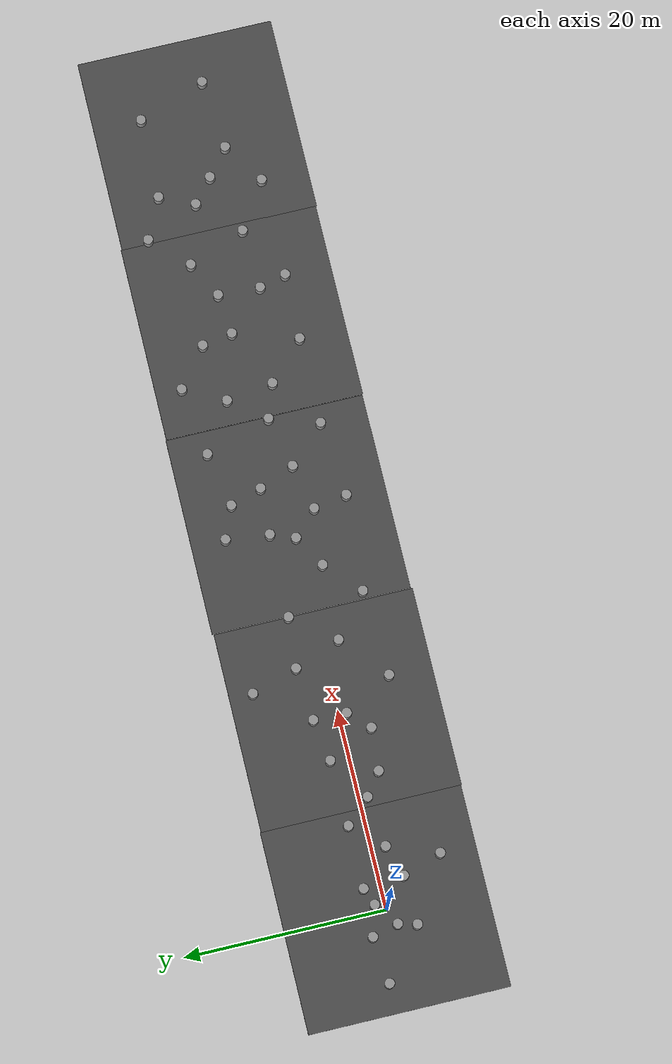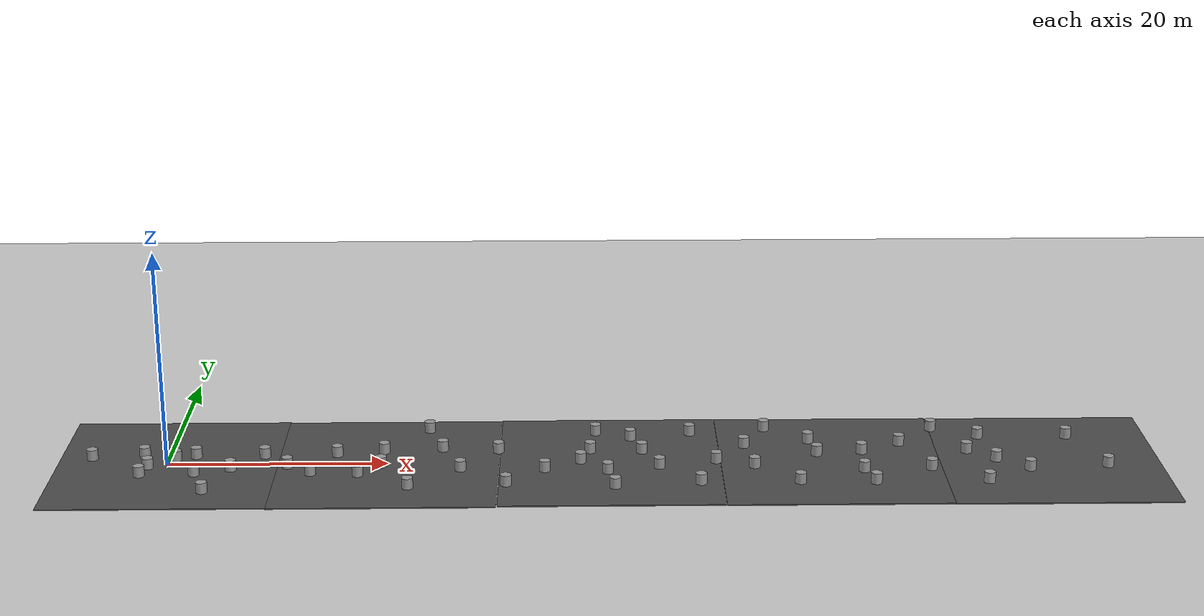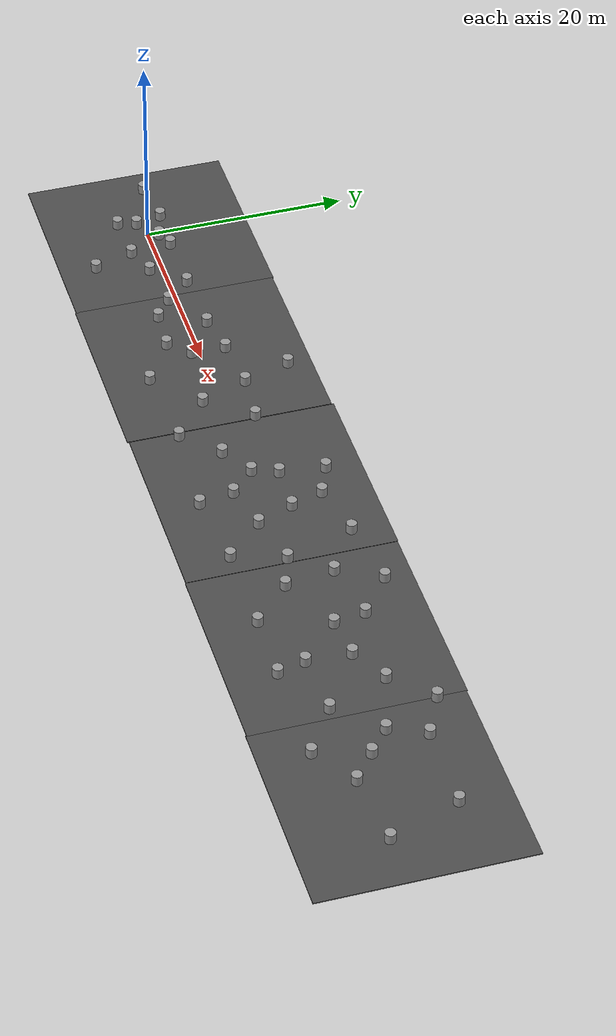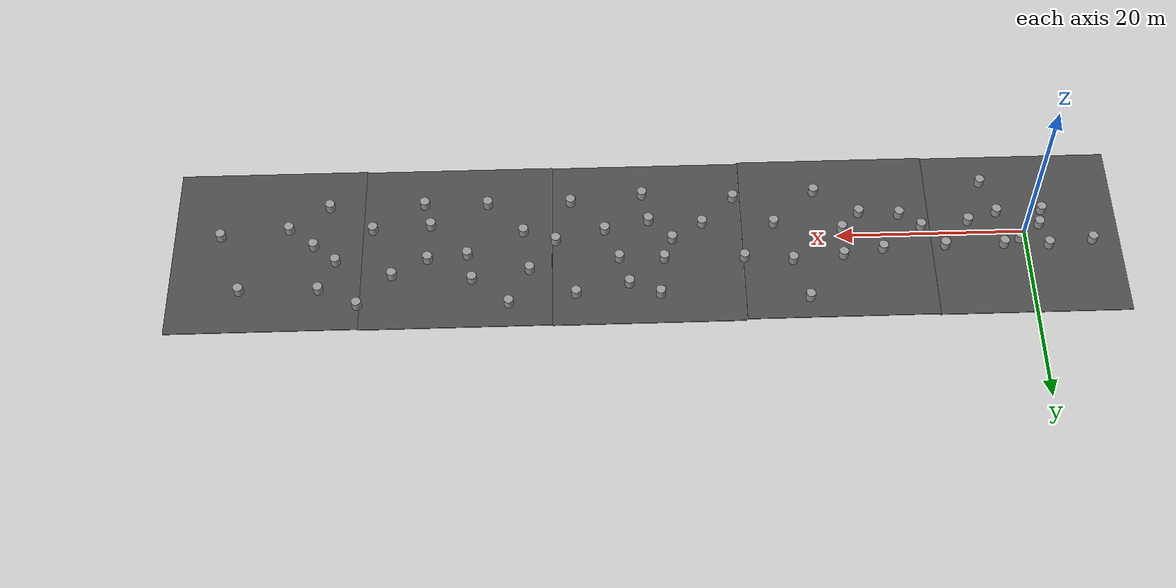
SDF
<sdf version="1.6">
 <world name="default">
  <light name="sun" type="directional">
   <pose>0 0 10 0 -0 0</pose>
   <diffuse>0.8 0.8 0.8 1</diffuse>
   <specular>0.2 0.2 0.2 1</specular>
   <attenuation>
    <range>1000</range>
    <constant>0.9</constant>
    <linear>0.01</linear>
    <quadratic>0.001</quadratic>
   </attenuation>
   <direction>-0.5 0.1 -0.9</direction>
  </light>
  <model name="ground_plane">
   <static>1</static>
   <link name="link">
    <collision name="collision">
     <geometry><plane><normal>0 0 1</normal><size>100 100</size></plane></geometry>
     <surface>
      <contact><collide_bitmask>65535</collide_bitmask></contact>
      <friction><ode><mu>100</mu><mu2>50</mu2></ode></friction>
     </surface>
    </collision>
    <visual name="visual">
     <cast_shadows>0</cast_shadows>
     <geometry><plane><normal>0 0 1</normal><size>100 100</size></plane></geometry>
     <material>
      <script><uri>file://media/materials/scripts/gazebo.material</uri><name>Gazebo/Grey</name></script>
     </material>
    </visual>
   </link>
  </model>
  <gravity>0 0 -9.8</gravity>
  <magnetic_field>6e-06 2.3e-05 -4.2e-05</magnetic_field>
  <atmosphere type="adiabatic"/>
  <physics name="default_physics" default="0" type="ode">
   <max_step_size>0.001</max_step_size>
   <real_time_factor>1</real_time_factor>
   <real_time_update_rate>1000</real_time_update_rate>
  </physics>
  <scene><ambient>0.4 0.4 0.4 1</ambient><background>0.7 0.7 0.7 1</background><shadows>1</shadows></scene>
  <audio><device>default</device></audio>
  <spherical_coordinates>
   <surface_model>EARTH_WGS84</surface_model>
   <latitude_deg>0</latitude_deg>
   <longitude_deg>0</longitude_deg>
   <elevation>0</elevation>
   <heading_deg>0</heading_deg>
  </spherical_coordinates>
  <model name="asphalt_plane">
   <static>1</static>
   <link name="link">
    <collision name="collision"><geometry><box><size>20 20 0.1</size></box></geometry></collision>
    <visual name="visual">
     <cast_shadows>0</cast_shadows>
     <geometry><box><size>20 20 0.1</size></box></geometry>
     <material>
      <script>
       <uri>model://asphalt_plane/materials/scripts</uri>
       <uri>model://asphalt_plane/materials/textures</uri>
       <name>vrc/asphalt</name>
      </script>
     </material>
    </visual>
   </link>
   <pose>0.093362 0.087531 0 0 -0 0</pose>
  </model>
  <model name="unit_cylinder">
   <pose>-2.29859 1.87875 0.55 0 -0 0.000136</pose>
   <link name="link">
    <inertial>
     <mass>1</mass>
     <inertia><ixx>0.145833</ixx><ixy>0</ixy><ixz>0</ixz><iyy>0.145833</iyy><iyz>0</iyz><izz>0.125</izz></inertia>
    </inertial>
    <collision name="collision">
     <geometry><cylinder><radius>0.5</radius><length>1</length></cylinder></geometry>
    </collision>
    <visual name="visual">
     <geometry><cylinder><radius>0.5</radius><length>1</length></cylinder></geometry>
     <material>
      <script><name>Gazebo/Grey</name><uri>file://media/materials/scripts/gazebo.material</uri></script>
     </material>
    </visual>
   </link>
  </model>
  <model name="unit_cylinder_0">
   <pose>-2.10483 -2.57831 0.549999 -4e-06 -1e-06 0.000131</pose>
   <link name="link">
    <inertial>
     <mass>1</mass>
     <inertia><ixx>0.145833</ixx><ixy>0</ixy><ixz>0</ixz><iyy>0.145833</iyy><iyz>0</iyz><izz>0.125</izz></inertia>
    </inertial>
    <collision name="collision">
     <geometry><cylinder><radius>0.5</radius><length>1</length></cylinder></geometry>
    </collision>
    <visual name="visual">
     <geometry><cylinder><radius>0.5</radius><length>1</length></cylinder></geometry>
     <material>
      <script><name>Gazebo/Grey</name><uri>file://media/materials/scripts/gazebo.material</uri></script>
     </material>
    </visual>
   </link>
  </model>
  <model name="unit_cylinder_1">
   <pose>2.42533 1.65977 0.550001 2e-06 -0 0.000243</pose>
   <link name="link">
    <inertial>
     <mass>1</mass>
     <inertia><ixx>0.145833</ixx><ixy>0</ixy><ixz>0</ixz><iyy>0.145833</iyy><iyz>0</iyz><izz>0.125</izz></inertia>
    </inertial>
    <collision name="collision">
     <geometry><cylinder><radius>0.5</radius><length>1</length></cylinder></geometry>
    </collision>
    <visual name="visual">
     <geometry><cylinder><radius>0.5</radius><length>1</length></cylinder></geometry>
     <material>
      <script><name>Gazebo/Grey</name><uri>file://media/materials/scripts/gazebo.material</uri></script>
     </material>
    </visual>
   </link>
  </model>
  <model name="unit_cylinder_2">
   <pose>2.75313 -2.41558 0.550004 7e-06 2e-06 0.000108</pose>
   <link name="link">
    <inertial>
     <mass>1</mass>
     <inertia><ixx>0.145833</ixx><ixy>0</ixy><ixz>0</ixz><iyy>0.145833</iyy><iyz>0</iyz><izz>0.125</izz></inertia>
    </inertial>
    <collision name="collision">
     <geometry><cylinder><radius>0.5</radius><length>1</length></cylinder></geometry>
    </collision>
    <visual name="visual">
     <geometry><cylinder><radius>0.5</radius><length>1</length></cylinder></geometry>
     <material>
      <script><name>Gazebo/Grey</name><uri>file://media/materials/scripts/gazebo.material</uri></script>
     </material>
    </visual>
   </link>
  </model>
  <model name="unit_cylinder_3">
   <pose>-1.63259 -0.739276 0.55 0 -0 0.000115</pose>
   <link name="link">
    <inertial>
     <mass>1</mass>
     <inertia><ixx>0.145833</ixx><ixy>0</ixy><ixz>0</ixz><iyy>0.145833</iyy><iyz>0</iyz><izz>0.125</izz></inertia>
    </inertial>
    <collision name="collision">
     <geometry><cylinder><radius>0.5</radius><length>1</length></cylinder></geometry>
    </collision>
    <visual name="visual">
     <geometry><cylinder><radius>0.5</radius><length>1</length></cylinder></geometry>
     <material>
      <script><name>Gazebo/Grey</name><uri>file://media/materials/scripts/gazebo.material</uri></script>
     </material>
    </visual>
   </link>
  </model>
  <model name="unit_cylinder_4">
   <pose>4.05996 -6.35999 0.550001 1e-06 -2e-06 -9.8e-05</pose>
   <link name="link">
    <inertial>
     <mass>1</mass>
     <inertia><ixx>0.145833</ixx><ixy>0</ixy><ixz>0</ixz><iyy>0.145833</iyy><iyz>0</iyz><izz>0.125</izz></inertia>
    </inertial>
    <collision name="collision">
     <geometry><cylinder><radius>0.5</radius><length>1</length></cylinder></geometry>
    </collision>
    <visual name="visual">
     <geometry><cylinder><radius>0.5</radius><length>1</length></cylinder></geometry>
     <material>
      <script><name>Gazebo/Grey</name><uri>file://media/materials/scripts/gazebo.material</uri></script>
     </material>
    </visual>
   </link>
  </model>
  <model name="unit_cylinder_5">
   <pose>0.672984 0.983953 0.54999 0 -0 0.000175</pose>
   <link name="link">
    <inertial>
     <mass>1</mass>
     <inertia><ixx>0.145833</ixx><ixy>0</ixy><ixz>0</ixz><iyy>0.145833</iyy><iyz>0</iyz><izz>0.125</izz></inertia>
    </inertial>
    <collision name="collision">
     <geometry><cylinder><radius>0.5</radius><length>1</length></cylinder></geometry>
    </collision>
    <visual name="visual">
     <geometry><cylinder><radius>0.5</radius><length>1</length></cylinder></geometry>
     <material>
      <script><name>Gazebo/Grey</name><uri>file://media/materials/scripts/gazebo.material</uri></script>
     </material>
    </visual>
   </link>
  </model>
  <model name="unit_cylinder_6">
   <pose>5.91371 -1.37835 0.550001 3e-06 1e-06 2.7e-05</pose>
   <link name="link">
    <inertial>
     <mass>1</mass>
     <inertia><ixx>0.145833</ixx><ixy>0</ixy><ixz>0</ixz><iyy>0.145833</iyy><iyz>0</iyz><izz>0.125</izz></inertia>
    </inertial>
    <collision name="collision">
     <geometry><cylinder><radius>0.5</radius><length>1</length></cylinder></geometry>
    </collision>
    <visual name="visual">
     <geometry><cylinder><radius>0.5</radius><length>1</length></cylinder></geometry>
     <material>
      <script><name>Gazebo/Grey</name><uri>file://media/materials/scripts/gazebo.material</uri></script>
     </material>
    </visual>
   </link>
  </model>
  <model name="unit_cylinder_7">
   <pose>8.66288 1.65125 0.549991 1e-06 -0 -0.000212</pose>
   <link name="link">
    <inertial>
     <mass>1</mass>
     <inertia><ixx>0.145833</ixx><ixy>0</ixy><ixz>0</ixz><iyy>0.145833</iyy><iyz>0</iyz><izz>0.125</izz></inertia>
    </inertial>
    <collision name="collision">
     <geometry><cylinder><radius>0.5</radius><length>1</length></cylinder></geometry>
    </collision>
    <visual name="visual">
     <geometry><cylinder><radius>0.5</radius><length>1</length></cylinder></geometry>
     <material>
      <script><name>Gazebo/Grey</name><uri>file://media/materials/scripts/gazebo.material</uri></script>
     </material>
    </visual>
   </link>
  </model>
  <model name="unit_cylinder_8">
   <pose>-6.9934 1.38182 0.549991 0 -2e-06 -0.000305</pose>
   <link name="link">
    <inertial>
     <mass>1</mass>
     <inertia><ixx>0.145833</ixx><ixy>0</ixy><ixz>0</ixz><iyy>0.145833</iyy><iyz>0</iyz><izz>0.125</izz></inertia>
    </inertial>
    <collision name="collision">
     <geometry><cylinder><radius>0.5</radius><length>1</length></cylinder></geometry>
    </collision>
    <visual name="visual">
     <geometry><cylinder><radius>0.5</radius><length>1</length></cylinder></geometry>
     <material>
      <script><name>Gazebo/Grey</name><uri>file://media/materials/scripts/gazebo.material</uri></script>
     </material>
    </visual>
   </link>
  </model>
  <model name="unit_cylinder_9">
   <pose>10.9697 -0.81715 0.550003 2e-06 6e-06 -0.000365</pose>
   <link name="link">
    <inertial>
     <mass>1</mass>
     <inertia><ixx>0.145833</ixx><ixy>0</ixy><ixz>0</ixz><iyy>0.145833</iyy><iyz>0</iyz><izz>0.125</izz></inertia>
    </inertial>
    <collision name="collision">
     <geometry><cylinder><radius>0.5</radius><length>1</length></cylinder></geometry>
    </collision>
    <visual name="visual">
     <geometry><cylinder><radius>0.5</radius><length>1</length></cylinder></geometry>
     <material>
      <script><name>Gazebo/Grey</name><uri>file://media/materials/scripts/gazebo.material</uri></script>
     </material>
    </visual>
   </link>
  </model>
  <model name="asphalt_plane_0">
   <static>1</static>
   <link name="link">
    <collision name="collision"><geometry><box><size>20 20 0.1</size></box></geometry></collision>
    <visual name="visual">
     <cast_shadows>0</cast_shadows>
     <geometry><box><size>20 20 0.1</size></box></geometry>
     <material>
      <script>
       <uri>model://asphalt_plane/materials/scripts</uri>
       <uri>model://asphalt_plane/materials/textures</uri>
       <name>vrc/asphalt</name>
      </script>
     </material>
    </visual>
   </link>
   <pose>20.0372 -0.00169 0 0 -0 0</pose>
  </model>
  <model name="unit_cylinder_10">
   <pose>15.2464 1.85955 0.55 0 -0 8.6e-05</pose>
   <link name="link">
    <inertial>
     <mass>1</mass>
     <inertia><ixx>0.145833</ixx><ixy>0</ixy><ixz>0</ixz><iyy>0.145833</iyy><iyz>0</iyz><izz>0.125</izz></inertia>
    </inertial>
    <collision name="collision">
     <geometry><cylinder><radius>0.5</radius><length>1</length></cylinder></geometry>
    </collision>
    <visual name="visual">
     <geometry><cylinder><radius>0.5</radius><length>1</length></cylinder></geometry>
     <material>
      <script><name>Gazebo/Grey</name><uri>file://media/materials/scripts/gazebo.material</uri></script>
     </material>
    </visual>
   </link>
  </model>
  <model name="unit_cylinder_11">
   <pose>17.449 -2.7822 0.550002 -4e-06 -1e-06 0.00021</pose>
   <link name="link">
    <inertial>
     <mass>1</mass>
     <inertia><ixx>0.145833</ixx><ixy>0</ixy><ixz>0</ixz><iyy>0.145833</iyy><iyz>0</iyz><izz>0.125</izz></inertia>
    </inertial>
    <collision name="collision">
     <geometry><cylinder><radius>0.5</radius><length>1</length></cylinder></geometry>
    </collision>
    <visual name="visual">
     <geometry><cylinder><radius>0.5</radius><length>1</length></cylinder></geometry>
     <material>
      <script><name>Gazebo/Grey</name><uri>file://media/materials/scripts/gazebo.material</uri></script>
     </material>
    </visual>
   </link>
  </model>
  <model name="unit_cylinder_12">
   <pose>19.4846 2.53261 0.549991 1e-06 -0 5.1e-05</pose>
   <link name="link">
    <inertial>
     <mass>1</mass>
     <inertia><ixx>0.145833</ixx><ixy>0</ixy><ixz>0</ixz><iyy>0.145833</iyy><iyz>0</iyz><izz>0.125</izz></inertia>
    </inertial>
    <collision name="collision">
     <geometry><cylinder><radius>0.5</radius><length>1</length></cylinder></geometry>
    </collision>
    <visual name="visual">
     <geometry><cylinder><radius>0.5</radius><length>1</length></cylinder></geometry>
     <material>
      <script><name>Gazebo/Grey</name><uri>file://media/materials/scripts/gazebo.material</uri></script>
     </material>
    </visual>
   </link>
  </model>
  <model name="unit_cylinder_13">
   <pose>19.4058 -0.787679 0.54999 0 -0 0.000139</pose>
   <link name="link">
    <inertial>
     <mass>1</mass>
     <inertia><ixx>0.145833</ixx><ixy>0</ixy><ixz>0</ixz><iyy>0.145833</iyy><iyz>0</iyz><izz>0.125</izz></inertia>
    </inertial>
    <collision name="collision">
     <geometry><cylinder><radius>0.5</radius><length>1</length></cylinder></geometry>
    </collision>
    <visual name="visual">
     <geometry><cylinder><radius>0.5</radius><length>1</length></cylinder></geometry>
     <material>
      <script><name>Gazebo/Grey</name><uri>file://media/materials/scripts/gazebo.material</uri></script>
     </material>
    </visual>
   </link>
  </model>
  <model name="unit_cylinder_14">
   <pose>13.1818 -2.45774 0.550004 7e-06 2e-06 -0.000209</pose>
   <link name="link">
    <inertial>
     <mass>1</mass>
     <inertia><ixx>0.145833</ixx><ixy>0</ixy><ixz>0</ixz><iyy>0.145833</iyy><iyz>0</iyz><izz>0.125</izz></inertia>
    </inertial>
    <collision name="collision">
     <geometry><cylinder><radius>0.5</radius><length>1</length></cylinder></geometry>
    </collision>
    <visual name="visual">
     <geometry><cylinder><radius>0.5</radius><length>1</length></cylinder></geometry>
     <material>
      <script><name>Gazebo/Grey</name><uri>file://media/materials/scripts/gazebo.material</uri></script>
     </material>
    </visual>
   </link>
  </model>
  <model name="unit_cylinder_15">
   <pose>26.6148 -1.72 0.549991 2e-06 -2e-06 -0.049166</pose>
   <link name="link">
    <inertial>
     <mass>1</mass>
     <inertia><ixx>0.145833</ixx><ixy>0</ixy><ixz>0</ixz><iyy>0.145833</iyy><iyz>0</iyz><izz>0.125</izz></inertia>
    </inertial>
    <collision name="collision">
     <geometry><cylinder><radius>0.5</radius><length>1</length></cylinder></geometry>
    </collision>
    <visual name="visual">
     <geometry><cylinder><radius>0.5</radius><length>1</length></cylinder></geometry>
     <material>
      <script><name>Gazebo/Grey</name><uri>file://media/materials/scripts/gazebo.material</uri></script>
     </material>
    </visual>
   </link>
  </model>
  <model name="unit_cylinder_16">
   <pose>24.8239 2.98261 0.55 0 -0 1.8e-05</pose>
   <link name="link">
    <inertial>
     <mass>1</mass>
     <inertia><ixx>0.145833</ixx><ixy>0</ixy><ixz>0</ixz><iyy>0.145833</iyy><iyz>0</iyz><izz>0.125</izz></inertia>
    </inertial>
    <collision name="collision">
     <geometry><cylinder><radius>0.5</radius><length>1</length></cylinder></geometry>
    </collision>
    <visual name="visual">
     <geometry><cylinder><radius>0.5</radius><length>1</length></cylinder></geometry>
     <material>
      <script><name>Gazebo/Grey</name><uri>file://media/materials/scripts/gazebo.material</uri></script>
     </material>
    </visual>
   </link>
  </model>
  <model name="asphalt_plane_1">
   <static>1</static>
   <link name="link">
    <collision name="collision"><geometry><box><size>20 20 0.1</size></box></geometry></collision>
    <visual name="visual">
     <cast_shadows>0</cast_shadows>
     <geometry><box><size>20 20 0.1</size></box></geometry>
     <material>
      <script>
       <uri>model://asphalt_plane/materials/scripts</uri>
       <uri>model://asphalt_plane/materials/textures</uri>
       <name>vrc/asphalt</name>
      </script>
     </material>
    </visual>
   </link>
   <pose>40.1163 0.164408 0 0 -0 0</pose>
  </model>
  <model name="unit_cylinder_17">
   <pose>29.9318 2.51271 0.55 0 -0 0.000107</pose>
   <link name="link">
    <inertial>
     <mass>1</mass>
     <inertia><ixx>0.145833</ixx><ixy>0</ixy><ixz>0</ixz><iyy>0.145833</iyy><iyz>0</iyz><izz>0.125</izz></inertia>
    </inertial>
    <collision name="collision">
     <geometry><cylinder><radius>0.5</radius><length>1</length></cylinder></geometry>
    </collision>
    <visual name="visual">
     <geometry><cylinder><radius>0.5</radius><length>1</length></cylinder></geometry>
     <material>
      <script><name>Gazebo/Grey</name><uri>file://media/materials/scripts/gazebo.material</uri></script>
     </material>
    </visual>
   </link>
  </model>
  <model name="unit_cylinder_18">
   <pose>34.2133 -1.94794 0.550004 5e-06 5e-06 -0.000202</pose>
   <link name="link">
    <inertial>
     <mass>1</mass>
     <inertia><ixx>0.145833</ixx><ixy>0</ixy><ixz>0</ixz><iyy>0.145833</iyy><iyz>0</iyz><izz>0.125</izz></inertia>
    </inertial>
    <collision name="collision">
     <geometry><cylinder><radius>0.5</radius><length>1</length></cylinder></geometry>
    </collision>
    <visual name="visual">
     <geometry><cylinder><radius>0.5</radius><length>1</length></cylinder></geometry>
     <material>
      <script><name>Gazebo/Grey</name><uri>file://media/materials/scripts/gazebo.material</uri></script>
     </material>
    </visual>
   </link>
  </model>
  <model name="unit_cylinder_19">
   <pose>38.88 6.72305 0.550001 -2e-06 0 5.1e-05</pose>
   <link name="link">
    <inertial>
     <mass>1</mass>
     <inertia><ixx>0.145833</ixx><ixy>0</ixy><ixz>0</ixz><iyy>0.145833</iyy><iyz>0</iyz><izz>0.125</izz></inertia>
    </inertial>
    <collision name="collision">
     <geometry><cylinder><radius>0.5</radius><length>1</length></cylinder></geometry>
    </collision>
    <visual name="visual">
     <geometry><cylinder><radius>0.5</radius><length>1</length></cylinder></geometry>
     <material>
      <script><name>Gazebo/Grey</name><uri>file://media/materials/scripts/gazebo.material</uri></script>
     </material>
    </visual>
   </link>
  </model>
  <model name="unit_cylinder_20">
   <pose>40.5016 -5.86163 0.550002 -4e-06 -1e-06 4.9e-05</pose>
   <link name="link">
    <inertial>
     <mass>1</mass>
     <inertia><ixx>0.145833</ixx><ixy>0</ixy><ixz>0</ixz><iyy>0.145833</iyy><iyz>0</iyz><izz>0.125</izz></inertia>
    </inertial>
    <collision name="collision">
     <geometry><cylinder><radius>0.5</radius><length>1</length></cylinder></geometry>
    </collision>
    <visual name="visual">
     <geometry><cylinder><radius>0.5</radius><length>1</length></cylinder></geometry>
     <material>
      <script><name>Gazebo/Grey</name><uri>file://media/materials/scripts/gazebo.material</uri></script>
     </material>
    </visual>
   </link>
  </model>
  <model name="unit_cylinder_21">
   <pose>38.3535 2.37351 0.54999 0 0 -8e-06</pose>
   <link name="link">
    <inertial>
     <mass>1</mass>
     <inertia><ixx>0.145833</ixx><ixy>0</ixy><ixz>0</ixz><iyy>0.145833</iyy><iyz>0</iyz><izz>0.125</izz></inertia>
    </inertial>
    <collision name="collision">
     <geometry><cylinder><radius>0.5</radius><length>1</length></cylinder></geometry>
    </collision>
    <visual name="visual">
     <geometry><cylinder><radius>0.5</radius><length>1</length></cylinder></geometry>
     <material>
      <script><name>Gazebo/Grey</name><uri>file://media/materials/scripts/gazebo.material</uri></script>
     </material>
    </visual>
   </link>
  </model>
  <model name="unit_cylinder_22">
   <pose>44.5677 -1.40733 0.550002 1e-06 4e-06 3.1e-05</pose>
   <link name="link">
    <inertial>
     <mass>1</mass>
     <inertia><ixx>0.145833</ixx><ixy>0</ixy><ixz>0</ixz><iyy>0.145833</iyy><iyz>0</iyz><izz>0.125</izz></inertia>
    </inertial>
    <collision name="collision">
     <geometry><cylinder><radius>0.5</radius><length>1</length></cylinder></geometry>
    </collision>
    <visual name="visual">
     <geometry><cylinder><radius>0.5</radius><length>1</length></cylinder></geometry>
     <material>
      <script><name>Gazebo/Grey</name><uri>file://media/materials/scripts/gazebo.material</uri></script>
     </material>
    </visual>
   </link>
  </model>
  <model name="unit_cylinder_23">
   <pose>30.7927 -5.17605 0.549992 -3e-06 -2e-06 -0.000237</pose>
   <link name="link">
    <inertial>
     <mass>1</mass>
     <inertia><ixx>0.145833</ixx><ixy>0</ixy><ixz>0</ixz><iyy>0.145833</iyy><iyz>0</iyz><izz>0.125</izz></inertia>
    </inertial>
    <collision name="collision">
     <geometry><cylinder><radius>0.5</radius><length>1</length></cylinder></geometry>
    </collision>
    <visual name="visual">
     <geometry><cylinder><radius>0.5</radius><length>1</length></cylinder></geometry>
     <material>
      <script><name>Gazebo/Grey</name><uri>file://media/materials/scripts/gazebo.material</uri></script>
     </material>
    </visual>
   </link>
  </model>
  <model name="unit_cylinder_24">
   <pose>42.089 5.38194 0.55 0 -0 0.000174</pose>
   <link name="link">
    <inertial>
     <mass>1</mass>
     <inertia><ixx>0.145833</ixx><ixy>0</ixy><ixz>0</ixz><iyy>0.145833</iyy><iyz>0</iyz><izz>0.125</izz></inertia>
    </inertial>
    <collision name="collision">
     <geometry><cylinder><radius>0.5</radius><length>1</length></cylinder></geometry>
    </collision>
    <visual name="visual">
     <geometry><cylinder><radius>0.5</radius><length>1</length></cylinder></geometry>
     <material>
      <script><name>Gazebo/Grey</name><uri>file://media/materials/scripts/gazebo.material</uri></script>
     </material>
    </visual>
   </link>
  </model>
  <model name="unit_cylinder_25">
   <pose>47.6601 6.49503 0.550001 2e-06 1e-06 1.4e-05</pose>
   <link name="link">
    <inertial>
     <mass>1</mass>
     <inertia><ixx>0.145833</ixx><ixy>0</ixy><ixz>0</ixz><iyy>0.145833</iyy><iyz>0</iyz><izz>0.125</izz></inertia>
    </inertial>
    <collision name="collision">
     <geometry><cylinder><radius>0.5</radius><length>1</length></cylinder></geometry>
    </collision>
    <visual name="visual">
     <geometry><cylinder><radius>0.5</radius><length>1</length></cylinder></geometry>
     <material>
      <script><name>Gazebo/Grey</name><uri>file://media/materials/scripts/gazebo.material</uri></script>
     </material>
    </visual>
   </link>
  </model>
  <model name="unit_cylinder_26">
   <pose>37.4483 -0.049633 0.550001 -1e-06 -2e-06 1e-06</pose>
   <link name="link">
    <inertial>
     <mass>1</mass>
     <inertia><ixx>0.145833</ixx><ixy>0</ixy><ixz>0</ixz><iyy>0.145833</iyy><iyz>0</iyz><izz>0.125</izz></inertia>
    </inertial>
    <collision name="collision">
     <geometry><cylinder><radius>0.5</radius><length>1</length></cylinder></geometry>
    </collision>
    <visual name="visual">
     <geometry><cylinder><radius>0.5</radius><length>1</length></cylinder></geometry>
     <material>
      <script><name>Gazebo/Grey</name><uri>file://media/materials/scripts/gazebo.material</uri></script>
     </material>
    </visual>
   </link>
  </model>
  <model name="unit_cylinder_27">
   <pose>22.0879 -5.69033 0.550002 -4e-06 -1e-06 -0.000116</pose>
   <link name="link">
    <inertial>
     <mass>1</mass>
     <inertia><ixx>0.145833</ixx><ixy>0</ixy><ixz>0</ixz><iyy>0.145833</iyy><iyz>0</iyz><izz>0.125</izz></inertia>
    </inertial>
    <collision name="collision">
     <geometry><cylinder><radius>0.5</radius><length>1</length></cylinder></geometry>
    </collision>
    <visual name="visual">
     <geometry><cylinder><radius>0.5</radius><length>1</length></cylinder></geometry>
     <material>
      <script><name>Gazebo/Grey</name><uri>file://media/materials/scripts/gazebo.material</uri></script>
     </material>
    </visual>
   </link>
  </model>
  <model name="unit_cylinder_28">
   <pose>23.3751 7.64499 0.54999 0 0 -0.000227</pose>
   <link name="link">
    <inertial>
     <mass>1</mass>
     <inertia><ixx>0.145833</ixx><ixy>0</ixy><ixz>0</ixz><iyy>0.145833</iyy><iyz>0</iyz><izz>0.125</izz></inertia>
    </inertial>
    <collision name="collision">
     <geometry><cylinder><radius>0.5</radius><length>1</length></cylinder></geometry>
    </collision>
    <visual name="visual">
     <geometry><cylinder><radius>0.5</radius><length>1</length></cylinder></geometry>
     <material>
      <script><name>Gazebo/Grey</name><uri>file://media/materials/scripts/gazebo.material</uri></script>
     </material>
    </visual>
   </link>
  </model>
  <model name="asphalt_plane_2">
   <static>1</static>
   <link name="link">
    <collision name="collision"><geometry><box><size>20 20 0.1</size></box></geometry></collision>
    <visual name="visual">
     <cast_shadows>0</cast_shadows>
     <geometry><box><size>20 20 0.1</size></box></geometry>
     <material>
      <script>
       <uri>model://asphalt_plane/materials/scripts</uri>
       <uri>model://asphalt_plane/materials/textures</uri>
       <name>vrc/asphalt</name>
      </script>
     </material>
    </visual>
   </link>
   <pose>60.1662 0.094258 0 0 -0 0</pose>
  </model>
  <model name="unit_cylinder_29">
   <pose>49.7665 -0.205439 0.55 0 -0 7.2e-05</pose>
   <link name="link">
    <inertial>
     <mass>1</mass>
     <inertia><ixx>0.145833</ixx><ixy>0</ixy><ixz>0</ixz><iyy>0.145833</iyy><iyz>0</iyz><izz>0.125</izz></inertia>
    </inertial>
    <collision name="collision">
     <geometry><cylinder><radius>0.5</radius><length>1</length></cylinder></geometry>
    </collision>
    <visual name="visual">
     <geometry><cylinder><radius>0.5</radius><length>1</length></cylinder></geometry>
     <material>
      <script><name>Gazebo/Grey</name><uri>file://media/materials/scripts/gazebo.material</uri></script>
     </material>
    </visual>
   </link>
  </model>
  <model name="unit_cylinder_30">
   <pose>53.1816 -1.42311 0.55 -0 -0 -0.000158</pose>
   <link name="link">
    <inertial>
     <mass>1</mass>
     <inertia><ixx>0.145833</ixx><ixy>0</ixy><ixz>0</ixz><iyy>0.145833</iyy><iyz>0</iyz><izz>0.125</izz></inertia>
    </inertial>
    <collision name="collision">
     <geometry><cylinder><radius>0.5</radius><length>1</length></cylinder></geometry>
    </collision>
    <visual name="visual">
     <geometry><cylinder><radius>0.5</radius><length>1</length></cylinder></geometry>
     <material>
      <script><name>Gazebo/Grey</name><uri>file://media/materials/scripts/gazebo.material</uri></script>
     </material>
    </visual>
   </link>
  </model>
  <model name="unit_cylinder_31">
   <pose>58.5295 4.41161 0.54999 0 0 -0.000175</pose>
   <link name="link">
    <inertial>
     <mass>1</mass>
     <inertia><ixx>0.145833</ixx><ixy>0</ixy><ixz>0</ixz><iyy>0.145833</iyy><iyz>0</iyz><izz>0.125</izz></inertia>
    </inertial>
    <collision name="collision">
     <geometry><cylinder><radius>0.5</radius><length>1</length></cylinder></geometry>
    </collision>
    <visual name="visual">
     <geometry><cylinder><radius>0.5</radius><length>1</length></cylinder></geometry>
     <material>
      <script><name>Gazebo/Grey</name><uri>file://media/materials/scripts/gazebo.material</uri></script>
     </material>
    </visual>
   </link>
  </model>
  <model name="unit_cylinder_32">
   <pose>63.0011 -2.50566 0.549991 0 2e-06 -1.5e-05</pose>
   <link name="link">
    <inertial>
     <mass>1</mass>
     <inertia><ixx>0.145833</ixx><ixy>0</ixy><ixz>0</ixz><iyy>0.145833</iyy><iyz>0</iyz><izz>0.125</izz></inertia>
    </inertial>
    <collision name="collision">
     <geometry><cylinder><radius>0.5</radius><length>1</length></cylinder></geometry>
    </collision>
    <visual name="visual">
     <geometry><cylinder><radius>0.5</radius><length>1</length></cylinder></geometry>
     <material>
      <script><name>Gazebo/Grey</name><uri>file://media/materials/scripts/gazebo.material</uri></script>
     </material>
    </visual>
   </link>
  </model>
  <model name="unit_cylinder_33">
   <pose>57.0015 -5.10266 0.550001 0 1e-06 7e-05</pose>
   <link name="link">
    <inertial>
     <mass>1</mass>
     <inertia><ixx>0.145833</ixx><ixy>0</ixy><ixz>0</ixz><iyy>0.145833</iyy><iyz>0</iyz><izz>0.125</izz></inertia>
    </inertial>
    <collision name="collision">
     <geometry><cylinder><radius>0.5</radius><length>1</length></cylinder></geometry>
    </collision>
    <visual name="visual">
     <geometry><cylinder><radius>0.5</radius><length>1</length></cylinder></geometry>
     <material>
      <script><name>Gazebo/Grey</name><uri>file://media/materials/scripts/gazebo.material</uri></script>
     </material>
    </visual>
   </link>
  </model>
  <model name="unit_cylinder_34">
   <pose>39.9012 -2.46779 0.54999 0 0 -4e-06</pose>
   <link name="link">
    <inertial>
     <mass>1</mass>
     <inertia><ixx>0.145833</ixx><ixy>0</ixy><ixz>0</ixz><iyy>0.145833</iyy><iyz>0</iyz><izz>0.125</izz></inertia>
    </inertial>
    <collision name="collision">
     <geometry><cylinder><radius>0.5</radius><length>1</length></cylinder></geometry>
    </collision>
    <visual name="visual">
     <geometry><cylinder><radius>0.5</radius><length>1</length></cylinder></geometry>
     <material>
      <script><name>Gazebo/Grey</name><uri>file://media/materials/scripts/gazebo.material</uri></script>
     </material>
    </visual>
   </link>
  </model>
  <model name="unit_cylinder_35">
   <pose>52.5088 3.35613 0.550002 -3e-06 -1e-06 7.5e-05</pose>
   <link name="link">
    <inertial>
     <mass>1</mass>
     <inertia><ixx>0.145833</ixx><ixy>0</ixy><ixz>0</ixz><iyy>0.145833</iyy><iyz>0</iyz><izz>0.125</izz></inertia>
    </inertial>
    <collision name="collision">
     <geometry><cylinder><radius>0.5</radius><length>1</length></cylinder></geometry>
    </collision>
    <visual name="visual">
     <geometry><cylinder><radius>0.5</radius><length>1</length></cylinder></geometry>
     <material>
      <script><name>Gazebo/Grey</name><uri>file://media/materials/scripts/gazebo.material</uri></script>
     </material>
    </visual>
   </link>
  </model>
  <model name="unit_cylinder_36">
   <pose>48.1541 -5.11418 0.550001 2e-06 1e-06 -6.4e-05</pose>
   <link name="link">
    <inertial>
     <mass>1</mass>
     <inertia><ixx>0.145833</ixx><ixy>0</ixy><ixz>0</ixz><iyy>0.145833</iyy><iyz>0</iyz><izz>0.125</izz></inertia>
    </inertial>
    <collision name="collision">
     <geometry><cylinder><radius>0.5</radius><length>1</length></cylinder></geometry>
    </collision>
    <visual name="visual">
     <geometry><cylinder><radius>0.5</radius><length>1</length></cylinder></geometry>
     <material>
      <script><name>Gazebo/Grey</name><uri>file://media/materials/scripts/gazebo.material</uri></script>
     </material>
    </visual>
   </link>
  </model>
  <model name="unit_cylinder_37">
   <pose>66.8905 3.67115 0.549991 -1e-06 -0 2.6e-05</pose>
   <link name="link">
    <inertial>
     <mass>1</mass>
     <inertia><ixx>0.145833</ixx><ixy>0</ixy><ixz>0</ixz><iyy>0.145833</iyy><iyz>0</iyz><izz>0.125</izz></inertia>
    </inertial>
    <collision name="collision">
     <geometry><cylinder><radius>0.5</radius><length>1</length></cylinder></geometry>
    </collision>
    <visual name="visual">
     <geometry><cylinder><radius>0.5</radius><length>1</length></cylinder></geometry>
     <material>
      <script><name>Gazebo/Grey</name><uri>file://media/materials/scripts/gazebo.material</uri></script>
     </material>
    </visual>
   </link>
  </model>
  <model name="asphalt_plane_3">
   <static>1</static>
   <link name="link">
    <collision name="collision"><geometry><box><size>20 20 0.1</size></box></geometry></collision>
    <visual name="visual">
     <cast_shadows>0</cast_shadows>
     <geometry><box><size>20 20 0.1</size></box></geometry>
     <material>
      <script>
       <uri>model://asphalt_plane/materials/scripts</uri>
       <uri>model://asphalt_plane/materials/textures</uri>
       <name>vrc/asphalt</name>
      </script>
     </material>
    </visual>
   </link>
   <pose>80.1174 -0.001873 0 0 -0 0</pose>
  </model>
  <model name="unit_cylinder_38">
   <pose>69.1297 -2.15405 0.550001 2e-06 1e-06 -0.00011</pose>
   <link name="link">
    <inertial>
     <mass>1</mass>
     <inertia><ixx>0.145833</ixx><ixy>0</ixy><ixz>0</ixz><iyy>0.145833</iyy><iyz>0</iyz><izz>0.125</izz></inertia>
    </inertial>
    <collision name="collision">
     <geometry><cylinder><radius>0.5</radius><length>1</length></cylinder></geometry>
    </collision>
    <visual name="visual">
     <geometry><cylinder><radius>0.5</radius><length>1</length></cylinder></geometry>
     <material>
      <script><name>Gazebo/Grey</name><uri>file://media/materials/scripts/gazebo.material</uri></script>
     </material>
    </visual>
   </link>
  </model>
  <model name="unit_cylinder_39">
   <pose>74.4476 5.23313 0.54999 0 0 -2e-06</pose>
   <link name="link">
    <inertial>
     <mass>1</mass>
     <inertia><ixx>0.145833</ixx><ixy>0</ixy><ixz>0</ixz><iyy>0.145833</iyy><iyz>0</iyz><izz>0.125</izz></inertia>
    </inertial>
    <collision name="collision">
     <geometry><cylinder><radius>0.5</radius><length>1</length></cylinder></geometry>
    </collision>
    <visual name="visual">
     <geometry><cylinder><radius>0.5</radius><length>1</length></cylinder></geometry>
     <material>
      <script><name>Gazebo/Grey</name><uri>file://media/materials/scripts/gazebo.material</uri></script>
     </material>
    </visual>
   </link>
  </model>
  <model name="unit_cylinder_40">
   <pose>77.9966 -2.44711 0.55 0 0 -3.6e-05</pose>
   <link name="link">
    <inertial>
     <mass>1</mass>
     <inertia><ixx>0.145833</ixx><ixy>0</ixy><ixz>0</ixz><iyy>0.145833</iyy><iyz>0</iyz><izz>0.125</izz></inertia>
    </inertial>
    <collision name="collision">
     <geometry><cylinder><radius>0.5</radius><length>1</length></cylinder></geometry>
    </collision>
    <visual name="visual">
     <geometry><cylinder><radius>0.5</radius><length>1</length></cylinder></geometry>
     <material>
      <script><name>Gazebo/Grey</name><uri>file://media/materials/scripts/gazebo.material</uri></script>
     </material>
    </visual>
   </link>
  </model>
  <model name="unit_cylinder_41">
   <pose>72.8801 1.76246 0.549998 -4e-06 -0 -0.00011</pose>
   <link name="link">
    <inertial>
     <mass>1</mass>
     <inertia><ixx>0.145833</ixx><ixy>0</ixy><ixz>0</ixz><iyy>0.145833</iyy><iyz>0</iyz><izz>0.125</izz></inertia>
    </inertial>
    <collision name="collision">
     <geometry><cylinder><radius>0.5</radius><length>1</length></cylinder></geometry>
    </collision>
    <visual name="visual">
     <geometry><cylinder><radius>0.5</radius><length>1</length></cylinder></geometry>
     <material>
      <script><name>Gazebo/Grey</name><uri>file://media/materials/scripts/gazebo.material</uri></script>
     </material>
    </visual>
   </link>
  </model>
  <model name="unit_cylinder_42">
   <pose>73.8212 -5.22091 0.549999 1e-06 1e-06 -0.00021</pose>
   <link name="link">
    <inertial>
     <mass>1</mass>
     <inertia><ixx>0.145833</ixx><ixy>0</ixy><ixz>0</ixz><iyy>0.145833</iyy><iyz>0</iyz><izz>0.125</izz></inertia>
    </inertial>
    <collision name="collision">
     <geometry><cylinder><radius>0.5</radius><length>1</length></cylinder></geometry>
    </collision>
    <visual name="visual">
     <geometry><cylinder><radius>0.5</radius><length>1</length></cylinder></geometry>
     <material>
      <script><name>Gazebo/Grey</name><uri>file://media/materials/scripts/gazebo.material</uri></script>
     </material>
    </visual>
   </link>
  </model>
  <model name="unit_cylinder_43">
   <pose>59.0613 1.32232 0.55 0 -0 4.8e-05</pose>
   <link name="link">
    <inertial>
     <mass>1</mass>
     <inertia><ixx>0.145833</ixx><ixy>0</ixy><ixz>0</ixz><iyy>0.145833</iyy><iyz>0</iyz><izz>0.125</izz></inertia>
    </inertial>
    <collision name="collision">
     <geometry><cylinder><radius>0.5</radius><length>1</length></cylinder></geometry>
    </collision>
    <visual name="visual">
     <geometry><cylinder><radius>0.5</radius><length>1</length></cylinder></geometry>
     <material>
      <script><name>Gazebo/Grey</name><uri>file://media/materials/scripts/gazebo.material</uri></script>
     </material>
    </visual>
   </link>
  </model>
  <model name="unit_cylinder_44">
   <pose>63.2124 1.74456 0.549992 -3e-06 -1e-06 3.9e-05</pose>
   <link name="link">
    <inertial>
     <mass>1</mass>
     <inertia><ixx>0.145833</ixx><ixy>0</ixy><ixz>0</ixz><iyy>0.145833</iyy><iyz>0</iyz><izz>0.125</izz></inertia>
    </inertial>
    <collision name="collision">
     <geometry><cylinder><radius>0.5</radius><length>1</length></cylinder></geometry>
    </collision>
    <visual name="visual">
     <geometry><cylinder><radius>0.5</radius><length>1</length></cylinder></geometry>
     <material>
      <script><name>Gazebo/Grey</name><uri>file://media/materials/scripts/gazebo.material</uri></script>
     </material>
    </visual>
   </link>
  </model>
  <model name="unit_cylinder_45">
   <pose>63.7291 -5.23364 0.54999 0 0 -1.4e-05</pose>
   <link name="link">
    <inertial>
     <mass>1</mass>
     <inertia><ixx>0.145833</ixx><ixy>0</ixy><ixz>0</ixz><iyy>0.145833</iyy><iyz>0</iyz><izz>0.125</izz></inertia>
    </inertial>
    <collision name="collision">
     <geometry><cylinder><radius>0.5</radius><length>1</length></cylinder></geometry>
    </collision>
    <visual name="visual">
     <geometry><cylinder><radius>0.5</radius><length>1</length></cylinder></geometry>
     <material>
      <script><name>Gazebo/Grey</name><uri>file://media/materials/scripts/gazebo.material</uri></script>
     </material>
    </visual>
   </link>
  </model>
  <model name="unit_cylinder_46">
   <pose>70.3576 7.23157 0.549991 0 -0 2e-06</pose>
   <link name="link">
    <inertial>
     <mass>1</mass>
     <inertia><ixx>0.145833</ixx><ixy>0</ixy><ixz>0</ixz><iyy>0.145833</iyy><iyz>0</iyz><izz>0.125</izz></inertia>
    </inertial>
    <collision name="collision">
     <geometry><cylinder><radius>0.5</radius><length>1</length></cylinder></geometry>
    </collision>
    <visual name="visual">
     <geometry><cylinder><radius>0.5</radius><length>1</length></cylinder></geometry>
     <material>
      <script><name>Gazebo/Grey</name><uri>file://media/materials/scripts/gazebo.material</uri></script>
     </material>
    </visual>
   </link>
  </model>
  <model name="unit_cylinder_47">
   <pose>75.2769 -0.252913 0.550001 -2e-06 -1e-06 -2.8e-05</pose>
   <link name="link">
    <inertial>
     <mass>1</mass>
     <inertia><ixx>0.145833</ixx><ixy>0</ixy><ixz>0</ixz><iyy>0.145833</iyy><iyz>0</iyz><izz>0.125</izz></inertia>
    </inertial>
    <collision name="collision">
     <geometry><cylinder><radius>0.5</radius><length>1</length></cylinder></geometry>
    </collision>
    <visual name="visual">
     <geometry><cylinder><radius>0.5</radius><length>1</length></cylinder></geometry>
     <material>
      <script><name>Gazebo/Grey</name><uri>file://media/materials/scripts/gazebo.material</uri></script>
     </material>
    </visual>
   </link>
  </model>
  <model name="unit_cylinder_48">
   <pose>54.6487 7.4563 0.549992 1e-06 4e-06 -0.000184</pose>
   <link name="link">
    <inertial>
     <mass>1</mass>
     <inertia><ixx>0.145833</ixx><ixy>0</ixy><ixz>0</ixz><iyy>0.145833</iyy><iyz>0</iyz><izz>0.125</izz></inertia>
    </inertial>
    <collision name="collision">
     <geometry><cylinder><radius>0.5</radius><length>1</length></cylinder></geometry>
    </collision>
    <visual name="visual">
     <geometry><cylinder><radius>0.5</radius><length>1</length></cylinder></geometry>
     <material>
      <script><name>Gazebo/Grey</name><uri>file://media/materials/scripts/gazebo.material</uri></script>
     </material>
    </visual>
   </link>
  </model>
  <model name="unit_cylinder_49">
   <pose>43.0826 2.18651 0.55 0 -0 3.1e-05</pose>
   <link name="link">
    <inertial>
     <mass>1</mass>
     <inertia><ixx>0.145833</ixx><ixy>0</ixy><ixz>0</ixz><iyy>0.145833</iyy><iyz>0</iyz><izz>0.125</izz></inertia>
    </inertial>
    <collision name="collision">
     <geometry><cylinder><radius>0.5</radius><length>1</length></cylinder></geometry>
    </collision>
    <visual name="visual">
     <geometry><cylinder><radius>0.5</radius><length>1</length></cylinder></geometry>
     <material>
      <script><name>Gazebo/Grey</name><uri>file://media/materials/scripts/gazebo.material</uri></script>
     </material>
    </visual>
   </link>
  </model>
  <model name="unit_cylinder_50">
   <pose>82.6952 5.1203 0.550001 -1e-06 1e-06 5.5e-05</pose>
   <link name="link">
    <inertial>
     <mass>1</mass>
     <inertia><ixx>0.145833</ixx><ixy>0</ixy><ixz>0</ixz><iyy>0.145833</iyy><iyz>0</iyz><izz>0.125</izz></inertia>
    </inertial>
    <collision name="collision">
     <geometry><cylinder><radius>0.5</radius><length>1</length></cylinder></geometry>
    </collision>
    <visual name="visual">
     <geometry><cylinder><radius>0.5</radius><length>1</length></cylinder></geometry>
     <material>
      <script><name>Gazebo/Grey</name><uri>file://media/materials/scripts/gazebo.material</uri></script>
     </material>
    </visual>
   </link>
  </model>
  <model name="unit_cylinder_51">
   <pose>85.1758 -1.76003 0.550002 1e-06 4e-06 -1.6e-05</pose>
   <link name="link">
    <inertial>
     <mass>1</mass>
     <inertia><ixx>0.145833</ixx><ixy>0</ixy><ixz>0</ixz><iyy>0.145833</iyy><iyz>0</iyz><izz>0.125</izz></inertia>
    </inertial>
    <collision name="collision">
     <geometry><cylinder><radius>0.5</radius><length>1</length></cylinder></geometry>
    </collision>
    <visual name="visual">
     <geometry><cylinder><radius>0.5</radius><length>1</length></cylinder></geometry>
     <material>
      <script><name>Gazebo/Grey</name><uri>file://media/materials/scripts/gazebo.material</uri></script>
     </material>
    </visual>
   </link>
  </model>
 </world>
</sdf>
